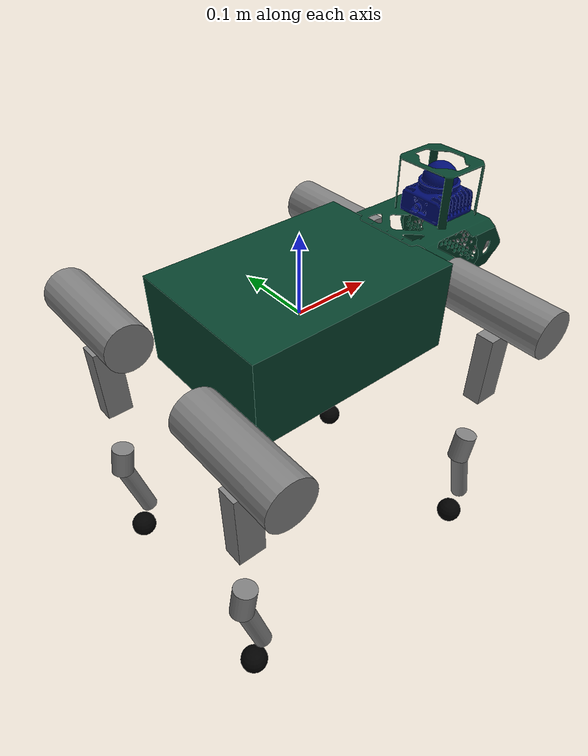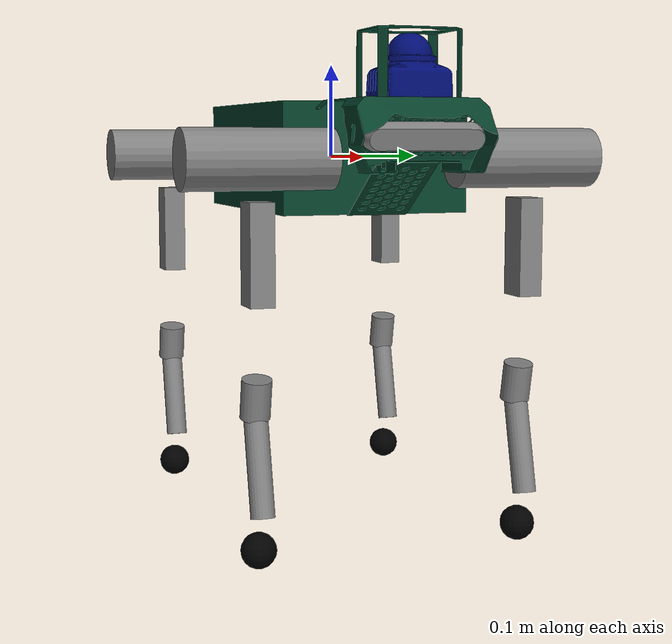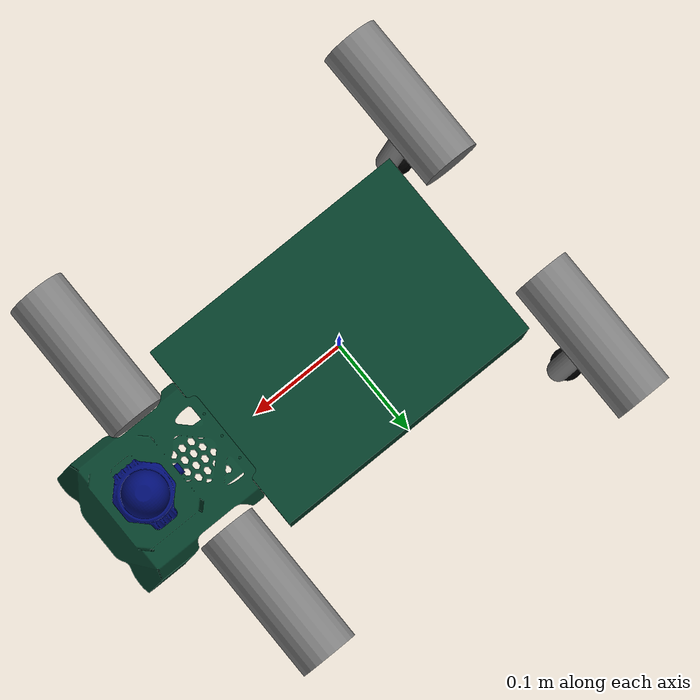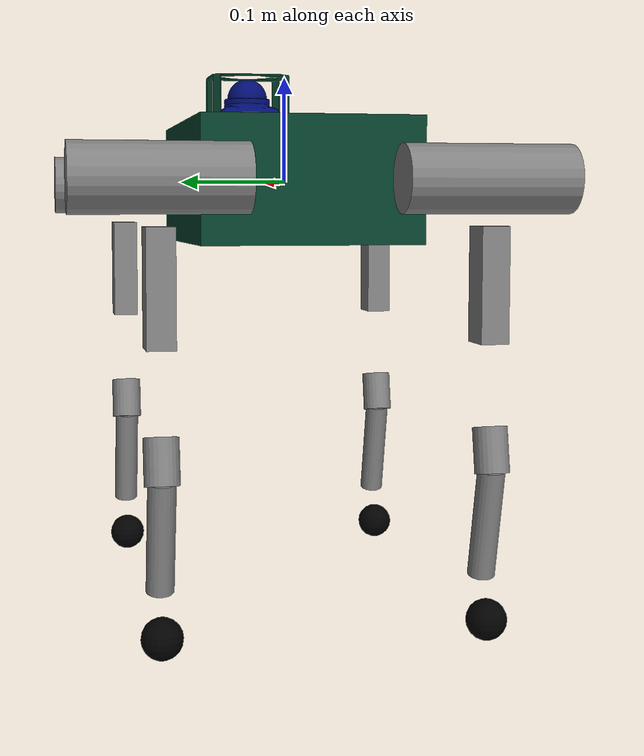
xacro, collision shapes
<?xml version="1.0" encoding="utf-8"?>
<robot name="m2_metal" xmlns:xacro="http://www.ros.org/wiki/xacro">

  <xacro:arg name="robot_controllers" default="$(find m2_sim)/config/ros_control/ros_control.yaml"/>
  <xacro:arg name="command_interface" default="effort"/>
  <xacro:arg name="disable_mid360" default="false"/>
  <xacro:arg name="disable_d455" default="false"/>

  <xacro:include filename="mid360.xacro"/>
  <xacro:include filename="realsense_d455.xacro"/>

  <!-- Materials -->
  <material name="svan_black">
    <color rgba="0.0 0.0 0.0 1.0"/>
  </material>
  <material name="svan_blue">
    <color rgba="0.156 0.55 0.96 1.0"/>
  </material>
  <material name="svan_green">
    <color rgba="0.024 0.251 0.169 1.0"/>
  </material>
  <material name="svan_grey">
    <color rgba="0.5 0.5 0.5 1.0"/>
  </material>

  <!-- Root base_link (REP-120 standard) -->
  <link name="base_link"/>
  <joint name="base_link_joint" type="fixed">
    <parent link="base_link"/>
    <child link="base"/>
    <origin xyz="0 0 0" rpy="0 0 0"/>
  </joint>

  <!-- Base link -->
  <link name="base">
    <inertial>
      <origin rpy="0 0 0" xyz="0 0 -0.00192864853030494"/>
      <mass value="5.627769"/>
      <inertia ixx="0.024980" ixy="-0.000005" ixz="-0.000717"
               iyy="0.053561" iyz="0.000015" izz="0.068454"/>
    </inertial>
    <visual>
      <origin xyz="0 0 0" rpy="0 0 0"/>
      <geometry>
        <mesh filename="package://m2_description/meshes/base_link.STL"/>
      </geometry>
      <material name="svan_green"/>
    </visual>
    <collision>
      <origin xyz="0 0 0" rpy="0 0 0"/>
      <geometry>
        <box size="0.28 0.20 0.114"/>
      </geometry>
    </collision>
  </link>

  <!-- ===== HEAD LINK & JOINT ===== -->
  <link name="Head_link">
    <inertial>
      <origin rpy="0 0 0" xyz="0.0225490273473234 0.00059885557588002 0.0169219464136344"/>
      <mass value="0.356095547247406"/>
      <inertia ixx="0.0012884" ixy="0.0000045" ixz="0.0000276"
               iyy="0.0012358" iyz="-0.0000075" izz="0.0010736"/>
    </inertial>
    <visual>
      <origin rpy="0 0 0" xyz="0 0 0"/>
      <geometry>
        <mesh filename="package://m2_description/meshes/Head_link.STL"/>
      </geometry>
      <material name="svan_green"/>
    </visual>
    <collision>
      <origin rpy="0 0 0" xyz="0 0 0"/>
      <geometry>
        <mesh filename="package://m2_description/meshes/Head_link.STL"/>
      </geometry>
    </collision>
  </link>
  <joint name="Head_Joint" type="fixed">
    <origin rpy="0 0 0" xyz="0.20146 0 0.02275"/>
    <parent link="base"/>
    <child link="Head_link"/>
    <axis xyz="0 0 0"/>
  </joint>

  <!-- Optional Sensors (Mid-360 LiDAR and RealSense D455) -->
  <xacro:unless value="$(arg disable_mid360)">
    <xacro:mid360_lidar parent="Head_link"/>
  </xacro:unless>

  <xacro:unless value="$(arg disable_d455)">
    <xacro:if value="$(arg disable_mid360)">
      <joint name="Lidar_1_casing_joint" type="fixed">
        <origin rpy="0 0 0" xyz="0.020784 0 0.074397"/>
        <parent link="Head_link"/>
        <child link="Lidar_1_link"/>
      </joint>
      <link name="Lidar_1_link"/>
    </xacro:if>
    <xacro:d455_camera parent="Lidar_1_link"/>
  </xacro:unless>

  <!-- IMU link -->
  <link name="imu_link"/>
  <joint name="base_to_imu" type="fixed">
    <parent link="base"/>
    <child link="imu_link"/>
    <origin xyz="0 0 0" rpy="0 0 0"/>
  </joint>

  <!-- ==================== FRONT LEFT (FL) LEG ==================== -->
  <joint name="FL_hip_joint" type="revolute">
    <parent link="base"/>
    <child link="FL_hip"/>
    <origin xyz="0.147 0.06 0.00025" rpy="0 0 0"/>
    <axis xyz="1 0 0"/>
    <limit lower="-4.8" upper="4.9" effort="12" velocity="30"/>
  </joint>
  <link name="FL_hip">
    <inertial>
      <origin xyz="0.00918208 -0.00133606 -0.00430117" rpy="0 0 0"/>
      <mass value="1.127"/>
      <inertia ixx="0.0026019" ixy="0.0001226" ixz="0" iyy="0.0009202" iyz="0" izz="0.0026365"/>
    </inertial>
    <visual>
      <origin xyz="0 0 0" rpy="0 0 0"/>
      <geometry>
        <mesh filename="package://m2_description/meshes/FL_hip.STL"/>
      </geometry>
      <material name="svan_grey"/>
    </visual>
    <collision>
      <origin xyz="0.04 0.08 0.0" rpy="1.57 0 0"/>
      <geometry>
        <cylinder length="0.15" radius="0.03"/>
      </geometry>
    </collision>
  </link>

  <joint name="FL_thigh_joint" type="revolute">
    <parent link="FL_hip"/>
    <child link="FL_thigh"/>
    <origin xyz="0.043751 0.0811 0.0" rpy="0 0 0"/>
    <axis xyz="0 1 0"/>
    <limit lower="-4.04" upper="4.188" effort="12" velocity="30"/>
  </joint>
  <link name="FL_thigh">
    <inertial>
      <origin xyz="0.0 0.00262472 -0.06933846" rpy="0 0 0"/>
      <mass value="0.15396568"/>
      <inertia ixx="0.00075104" ixy="0.0" ixz="0.0" iyy="0.00076" iyz="2.9e-05" izz="4.7e-05"/>
    </inertial>
    <visual>
      <origin xyz="0 0 0" rpy="0 0 0"/>
      <geometry>
        <mesh filename="package://m2_description/meshes/FL_thigh.STL"/>
      </geometry>
      <material name="svan_grey"/>
    </visual>
    <collision>
      <origin xyz="0.0 0.0 -0.09" rpy="0 0 0"/>
      <geometry>
        <box size="0.034 0.0245 0.10"/>
      </geometry>
    </collision>
  </link>

  <joint name="FL_calf_joint" type="revolute">
    <parent link="FL_thigh"/>
    <child link="FL_calf"/>
    <origin xyz="0.0 0.0 -0.1915" rpy="0 0 0"/>
    <axis xyz="0 1 0"/>
    <limit lower="-4.69" upper="4.91" effort="24" velocity="15"/>
  </joint>
  <link name="FL_calf">
    <inertial>
      <origin xyz="-0.00106 0.0 -0.12046" rpy="0 0 0"/>
      <mass value="0.124482"/>
      <inertia ixx="0.0005021" ixy="0.0" ixz="-1.27e-05" iyy="0.000517" iyz="0" izz="2.02e-05"/>
    </inertial>
    <visual>
      <origin xyz="0 0 0" rpy="0 0 0"/>
      <geometry>
        <mesh filename="package://m2_description/meshes/FL_calf.STL"/>
      </geometry>
      <material name="svan_grey"/>
    </visual>
    <collision>
      <origin xyz="-0.01 0.0 -0.04" rpy="0 0.2 0"/>
      <geometry>
        <cylinder length="0.04" radius="0.015"/>
      </geometry>
    </collision>
    <collision>
      <origin xyz="-0.0 0.0 -0.105" rpy="0 -0.24 0"/>
      <geometry>
        <cylinder length="0.1" radius="0.012"/>
      </geometry>
    </collision>
  </link>

  <joint name="FL_foot_joint" type="fixed" dont_collapse="true">
    <parent link="FL_calf"/>
    <child link="FL_foot"/>
    <origin xyz="-0.00351 0.0 -0.1901" rpy="0 0 0"/>
    <axis xyz="0 0 0"/>
    <limit lower="0" upper="0" effort="1000" velocity="0"/>
  </joint>
  <link name="FL_foot">
    <inertial>
      <origin xyz="-0.0025566 0.00017773 -0.00416818" rpy="0 0 0"/>
      <mass value="0.02330447"/>
      <inertia ixx="2.62e-06" ixy="0" ixz="3.7e-07" iyy="2.62e-06" iyz="0" izz="3e-06"/>
    </inertial>
    <visual>
      <origin xyz="0 0 0" rpy="0 0 0"/>
      <geometry>
        <mesh filename="package://m2_description/meshes/FL_foot.STL"/>
      </geometry>
      <material name="svan_black"/>
    </visual>
    <collision name="FL_foot_collision">
      <origin xyz="0.0 0.0 0.0" rpy="0 0 0"/>
      <geometry>
        <sphere radius="0.018"/>
      </geometry>
    </collision>
  </link>

  <link name="FL_foot_site"/>
  <joint name="FL_foot_site_joint" type="fixed" dont_collapse="true">
    <origin rpy="0 0 0" xyz="-0.0 0 -0.016"/>
    <parent link="FL_foot"/>
    <child link="FL_foot_site"/>
    <axis xyz="0 0 1"/>
    <limit effort="1000" lower="0" upper="0" velocity="0"/>
  </joint>

  <!-- ==================== FRONT RIGHT (FR) LEG ==================== -->
  <joint name="FR_hip_joint" type="revolute">
    <parent link="base"/>
    <child link="FR_hip"/>
    <origin xyz="0.147 -0.06 0.00025" rpy="0 0 0"/>
    <axis xyz="1 0 0"/>
    <limit lower="-4.8" upper="4.9" effort="12" velocity="30"/>
  </joint>
  <link name="FR_hip">
    <inertial>
      <origin xyz="0.00918208 -0.00133606 -0.00430117" rpy="0 0 0"/>
      <mass value="1.127"/>
      <inertia ixx="0.0026019" ixy="0.0001226" ixz="0" iyy="0.0009202" iyz="0" izz="0.0026365"/>
    </inertial>
    <visual>
      <origin xyz="0 0 0" rpy="0 0 0"/>
      <geometry>
        <mesh filename="package://m2_description/meshes/FR_hip.STL"/>
      </geometry>
      <material name="svan_grey"/>
    </visual>
    <collision>
      <origin xyz="0.04 -0.08 0.0" rpy="1.57 0 0"/>
      <geometry>
        <cylinder length="0.15" radius="0.03"/>
      </geometry>
    </collision>
  </link>

  <joint name="FR_thigh_joint" type="revolute">
    <parent link="FR_hip"/>
    <child link="FR_thigh"/>
    <origin xyz="0.043751 -0.0811 0.0" rpy="0 0 0"/>
    <axis xyz="0 1 0"/>
    <limit lower="-4.04" upper="4.188" effort="12" velocity="30"/>
  </joint>
  <link name="FR_thigh">
    <inertial>
      <origin xyz="0.0 0.00262472 -0.06933846" rpy="0 0 0"/>
      <mass value="0.15396568"/>
      <inertia ixx="0.00075104" ixy="0.0" ixz="0.0" iyy="0.00076" iyz="2.9e-05" izz="4.7e-05"/>
    </inertial>
    <visual>
      <origin xyz="0 0 0" rpy="0 0 0"/>
      <geometry>
        <mesh filename="package://m2_description/meshes/FR_thigh.STL"/>
      </geometry>
      <material name="svan_grey"/>
    </visual>
    <collision>
      <origin xyz="0.0 -0.0 -0.09" rpy="0 0 0"/>
      <geometry>
        <box size="0.034 0.0245 0.10"/>
      </geometry>
    </collision>
  </link>

  <joint name="FR_calf_joint" type="revolute">
    <parent link="FR_thigh"/>
    <child link="FR_calf"/>
    <origin xyz="0.0 -0.0 -0.1915" rpy="0 0 0"/>
    <axis xyz="0 1 0"/>
    <limit lower="-4.69" upper="4.91" effort="24" velocity="15"/>
  </joint>
  <link name="FR_calf">
    <inertial>
      <origin xyz="-0.00106 -0.0 -0.12046" rpy="0 0 0"/>
      <mass value="0.124482"/>
      <inertia ixx="0.0005021" ixy="0.0" ixz="-1.27e-05" iyy="0.000517" iyz="0" izz="2.02e-05"/>
    </inertial>
    <visual>
      <origin xyz="0 0 0" rpy="0 0 0"/>
      <geometry>
        <mesh filename="package://m2_description/meshes/FR_calf.STL"/>
      </geometry>
      <material name="svan_grey"/>
    </visual>
    <collision>
      <origin xyz="-0.01 -0.0 -0.04" rpy="0 0.2 0"/>
      <geometry>
        <cylinder length="0.04" radius="0.015"/>
      </geometry>
    </collision>
    <collision>
      <origin xyz="-0.0 -0.0 -0.105" rpy="0 -0.24 0"/>
      <geometry>
        <cylinder length="0.1" radius="0.012"/>
      </geometry>
    </collision>
  </link>

  <joint name="FR_foot_joint" type="fixed" dont_collapse="true">
    <parent link="FR_calf"/>
    <child link="FR_foot"/>
    <origin xyz="-0.00351 -0.0 -0.1901" rpy="0 0 0"/>
    <axis xyz="0 0 0"/>
    <limit lower="0" upper="0" effort="1000" velocity="0"/>
  </joint>
  <link name="FR_foot">
    <inertial>
      <origin xyz="-0.0025566 0.00017773 -0.00416818" rpy="0 0 0"/>
      <mass value="0.02330447"/>
      <inertia ixx="2.62e-06" ixy="0" ixz="3.7e-07" iyy="2.62e-06" iyz="0" izz="3e-06"/>
    </inertial>
    <visual>
      <origin xyz="0 0 0" rpy="0 0 0"/>
      <geometry>
        <mesh filename="package://m2_description/meshes/FR_foot.STL"/>
      </geometry>
      <material name="svan_black"/>
    </visual>
    <collision name="FR_foot_collision">
      <origin xyz="0.0 0.0 0.0" rpy="0 0 0"/>
      <geometry>
        <sphere radius="0.018"/>
      </geometry>
    </collision>
  </link>

  <link name="FR_foot_site"/>
  <joint name="FR_foot_site_joint" type="fixed" dont_collapse="true">
    <origin rpy="0 0 0" xyz="-0.0 0 -0.016"/>
    <parent link="FR_foot"/>
    <child link="FR_foot_site"/>
    <axis xyz="0 0 1"/>
    <limit effort="1000" lower="0" upper="0" velocity="0"/>
  </joint>

  <!-- ==================== REAR LEFT (RL) LEG ==================== -->
  <joint name="RL_hip_joint" type="revolute">
    <parent link="base"/>
    <child link="RL_hip"/>
    <origin xyz="-0.147 0.06 0.00025" rpy="0 0 0"/>
    <axis xyz="1 0 0"/>
    <limit lower="-4.8" upper="4.9" effort="12" velocity="30"/>
  </joint>
  <link name="RL_hip">
    <inertial>
      <origin xyz="0.00918208 -0.00133606 -0.00430117" rpy="0 0 0"/>
      <mass value="1.127"/>
      <inertia ixx="0.0026019" ixy="0.0001226" ixz="0" iyy="0.0009202" iyz="0" izz="0.0026365"/>
    </inertial>
    <visual>
      <origin xyz="0 0 0" rpy="0 0 0"/>
      <geometry>
        <mesh filename="package://m2_description/meshes/RL_hip.STL"/>
      </geometry>
      <material name="svan_grey"/>
    </visual>
    <collision>
      <origin xyz="-0.04 0.08 0.0" rpy="1.57 0 0"/>
      <geometry>
        <cylinder length="0.15" radius="0.03"/>
      </geometry>
    </collision>
  </link>

  <joint name="RL_thigh_joint" type="revolute">
    <parent link="RL_hip"/>
    <child link="RL_thigh"/>
    <origin xyz="-0.043751 0.0811 0.0" rpy="0 0 0"/>
    <axis xyz="0 1 0"/>
    <limit lower="-4.04" upper="4.188" effort="12" velocity="30"/>
  </joint>
  <link name="RL_thigh">
    <inertial>
      <origin xyz="0.0 0.00262472 -0.06933846" rpy="0 0 0"/>
      <mass value="0.15396568"/>
      <inertia ixx="0.00075104" ixy="0.0" ixz="0.0" iyy="0.00076" iyz="2.9e-05" izz="4.7e-05"/>
    </inertial>
    <visual>
      <origin xyz="0 0 0" rpy="0 0 0"/>
      <geometry>
        <mesh filename="package://m2_description/meshes/RL_thigh.STL"/>
      </geometry>
      <material name="svan_grey"/>
    </visual>
    <collision>
      <origin xyz="-0.0 0.0 -0.09" rpy="0 0 0"/>
      <geometry>
        <box size="0.034 0.0245 0.10"/>
      </geometry>
    </collision>
  </link>

  <joint name="RL_calf_joint" type="revolute">
    <parent link="RL_thigh"/>
    <child link="RL_calf"/>
    <origin xyz="-0.0 0.0 -0.1915" rpy="0 0 0"/>
    <axis xyz="0 1 0"/>
    <limit lower="-4.69" upper="4.91" effort="24" velocity="15"/>
  </joint>
  <link name="RL_calf">
    <inertial>
      <origin xyz="-0.00106 0.0 -0.1083" rpy="0 0 0"/>
      <mass value="0.124482"/>
      <inertia ixx="0.0005021" ixy="0.0" ixz="-1.27e-05" iyy="0.000517" iyz="0" izz="2.02e-05"/>
    </inertial>
    <visual>
      <origin xyz="0 0 0" rpy="0 0 0"/>
      <geometry>
        <mesh filename="package://m2_description/meshes/RL_calf.STL"/>
      </geometry>
      <material name="svan_grey"/>
    </visual>
    <collision>
      <origin xyz="-0.01 0.0 -0.04" rpy="0 0.2 0"/>
      <geometry>
        <cylinder length="0.04" radius="0.015"/>
      </geometry>
    </collision>
    <collision>
      <origin xyz="-0.0 0.0 -0.105" rpy="0 -0.24 0"/>
      <geometry>
        <cylinder length="0.1" radius="0.012"/>
      </geometry>
    </collision>
  </link>

  <joint name="RL_foot_joint" type="fixed" dont_collapse="true">
    <parent link="RL_calf"/>
    <child link="RL_foot"/>
    <origin xyz="-0.00351 0.0 -0.1901" rpy="0 0 0"/>
    <axis xyz="0 0 0"/>
    <limit lower="0" upper="0" effort="1000" velocity="0"/>
  </joint>
  <link name="RL_foot">
    <inertial>
      <origin xyz="-0.0025566 0.00017773 -0.00416818" rpy="0 0 0"/>
      <mass value="0.02330447"/>
      <inertia ixx="2.62e-06" ixy="0" ixz="3.7e-07" iyy="2.62e-06" iyz="0" izz="3e-06"/>
    </inertial>
    <visual>
      <origin xyz="0 0 0" rpy="0 0 0"/>
      <geometry>
        <mesh filename="package://m2_description/meshes/RL_foot.STL"/>
      </geometry>
      <material name="svan_black"/>
    </visual>
    <collision name="RL_foot_collision">
      <origin xyz="0.0 0.0 0.0" rpy="0 0 0"/>
      <geometry>
        <sphere radius="0.018"/>
      </geometry>
    </collision>
  </link>

  <link name="RL_foot_site"/>
  <joint name="RL_foot_site_joint" type="fixed" dont_collapse="true">
    <origin rpy="0 0 0" xyz="-0.0 0 -0.016"/>
    <parent link="RL_foot"/>
    <child link="RL_foot_site"/>
    <axis xyz="0 0 1"/>
    <limit effort="1000" lower="0" upper="0" velocity="0"/>
  </joint>

  <!-- ==================== REAR RIGHT (RR) LEG ==================== -->
  <joint name="RR_hip_joint" type="revolute">
    <parent link="base"/>
    <child link="RR_hip"/>
    <origin xyz="-0.147 -0.06 0.00025" rpy="0 0 0"/>
    <axis xyz="1 0 0"/>
    <limit lower="-4.8" upper="4.9" effort="12" velocity="30"/>
  </joint>
  <link name="RR_hip">
    <inertial>
      <origin xyz="0.00918208 -0.00133606 -0.00430117" rpy="0 0 0"/>
      <mass value="1.127"/>
      <inertia ixx="0.0026019" ixy="0.0001226" ixz="0" iyy="0.0009202" iyz="0" izz="0.0026365"/>
    </inertial>
    <visual>
      <origin xyz="0 0 0" rpy="0 0 0"/>
      <geometry>
        <mesh filename="package://m2_description/meshes/RR_hip.STL"/>
      </geometry>
      <material name="svan_grey"/>
    </visual>
    <collision>
      <origin xyz="-0.04 -0.08 0.0" rpy="1.57 0 0"/>
      <geometry>
        <cylinder length="0.15" radius="0.03"/>
      </geometry>
    </collision>
  </link>

  <joint name="RR_thigh_joint" type="revolute">
    <parent link="RR_hip"/>
    <child link="RR_thigh"/>
    <origin xyz="-0.043751 -0.0811 0.0" rpy="0 0 0"/>
    <axis xyz="0 1 0"/>
    <limit lower="-4.04" upper="4.188" effort="12" velocity="30"/>
  </joint>
  <link name="RR_thigh">
    <inertial>
      <origin xyz="0.0 0.00262472 -0.06933846" rpy="0 0 0"/>
      <mass value="0.15396568"/>
      <inertia ixx="0.00075104" ixy="0.0" ixz="0.0" iyy="0.00076" iyz="2.9e-05" izz="4.7e-05"/>
    </inertial>
    <visual>
      <origin xyz="0 0 0" rpy="0 0 0"/>
      <geometry>
        <mesh filename="package://m2_description/meshes/RR_thigh.STL"/>
      </geometry>
      <material name="svan_grey"/>
    </visual>
    <collision>
      <origin xyz="-0.0 -0.0 -0.09" rpy="0 0 0"/>
      <geometry>
        <box size="0.034 0.0245 0.10"/>
      </geometry>
    </collision>
  </link>

  <joint name="RR_calf_joint" type="revolute">
    <parent link="RR_thigh"/>
    <child link="RR_calf"/>
    <origin xyz="-0.0 -0.0 -0.1915" rpy="0 0 0"/>
    <axis xyz="0 1 0"/>
    <limit lower="-4.69" upper="4.91" effort="24" velocity="15"/>
  </joint>
  <link name="RR_calf">
    <inertial>
      <origin xyz="-0.00106 -0.0 -0.1083" rpy="0 0 0"/>
      <mass value="0.124482"/>
      <inertia ixx="0.0005021" ixy="0.0" ixz="-1.27e-05" iyy="0.000517" iyz="0" izz="2.02e-05"/>
    </inertial>
    <visual>
      <origin xyz="0 0 0" rpy="0 0 0"/>
      <geometry>
        <mesh filename="package://m2_description/meshes/RR_calf.STL"/>
      </geometry>
      <material name="svan_grey"/>
    </visual>
    <collision>
      <origin xyz="-0.01 -0.0 -0.04" rpy="0 0.2 0"/>
      <geometry>
        <cylinder length="0.04" radius="0.015"/>
      </geometry>
    </collision>
    <collision>
      <origin xyz="-0.0 -0.0 -0.105" rpy="0 -0.24 0"/>
      <geometry>
        <cylinder length="0.1" radius="0.012"/>
      </geometry>
    </collision>
  </link>

  <joint name="RR_foot_joint" type="fixed" dont_collapse="true">
    <parent link="RR_calf"/>
    <child link="RR_foot"/>
    <origin xyz="-0.00351 -0.0 -0.1901" rpy="0 0 0"/>
    <axis xyz="0 0 0"/>
    <limit lower="0" upper="0" effort="1000" velocity="0"/>
  </joint>
  <link name="RR_foot">
    <inertial>
      <origin xyz="-0.0025566 0.00017773 -0.00416818" rpy="0 0 0"/>
      <mass value="0.02330447"/>
      <inertia ixx="2.62e-06" ixy="0" ixz="3.7e-07" iyy="2.62e-06" iyz="0" izz="3e-06"/>
    </inertial>
    <visual>
      <origin xyz="0 0 0" rpy="0 0 0"/>
      <geometry>
        <mesh filename="package://m2_description/meshes/RR_foot.STL"/>
      </geometry>
      <material name="svan_black"/>
    </visual>
    <collision name="RR_foot_collision">
      <origin xyz="0.0 0.0 0.0" rpy="0 0 0"/>
      <geometry>
        <sphere radius="0.018"/>
      </geometry>
    </collision>
  </link>

  <link name="RR_foot_site"/>
  <joint name="RR_foot_site_joint" type="fixed" dont_collapse="true">
    <origin rpy="0 0 0" xyz="-0.0 0 -0.016"/>
    <parent link="RR_foot"/>
    <child link="RR_foot_site"/>
    <axis xyz="0 0 1"/>
    <limit effort="1000" lower="0" upper="0" velocity="0"/>
  </joint>

  <!-- ==================== GAZEBO SIM PLUGINS ==================== -->
  <!-- ROS 2 Control Plugin -->
  <gazebo>
    <plugin filename="gz_ros2_control-system" name="gz_ros2_control::GazeboSimROS2ControlPlugin">
      <parameters>$(arg robot_controllers)</parameters>
      <robot_param_node>robot_state_publisher</robot_param_node>
    </plugin>
  </gazebo>

  <!-- Ground-truth Odometry Plugin -->
  <gazebo>
    <plugin filename="gz-sim-odometry-publisher-system"
      name="gz::sim::systems::OdometryPublisher">
      <odom_frame>odom</odom_frame>
      <dimensions>3</dimensions>
      <robot_base_frame>base_link</robot_base_frame>
      <odom_topic>/odom/ground_truth</odom_topic>
      <odom_publish_frequency>50</odom_publish_frequency>
    </plugin>
  </gazebo>

  <!-- IMU Plugin on imu_link -->
  <gazebo reference="imu_link">
    <sensor name="imu_sensor" type="imu">
      <always_on>true</always_on>
      <update_rate>100</update_rate>
      <visualize>false</visualize>
      <topic>imu/data</topic>
      <gz_frame_id>imu_link</gz_frame_id>
      <imu>
        <angular_velocity>
          <x><noise type="gaussian"><mean>0.0</mean><stddev>2e-4</stddev></noise></x>
          <y><noise type="gaussian"><mean>0.0</mean><stddev>2e-4</stddev></noise></y>
          <z><noise type="gaussian"><mean>0.0</mean><stddev>2e-4</stddev></noise></z>
        </angular_velocity>
        <linear_acceleration>
          <x><noise type="gaussian"><mean>0.0</mean><stddev>1.7e-2</stddev></noise></x>
          <y><noise type="gaussian"><mean>0.0</mean><stddev>1.7e-2</stddev></noise></y>
          <z><noise type="gaussian"><mean>0.0</mean><stddev>1.7e-2</stddev></noise></z>
        </linear_acceleration>
      </imu>
      <plugin filename="gz-sim-imu-system" name="gz::sim::systems::Imu">
        <initial_orientation_as_reference>false</initial_orientation_as_reference>
      </plugin>
    </sensor>
  </gazebo>

  <!-- Base link physics -->
  <gazebo reference="base">
    <mu1>0.2</mu1>
    <mu2>0.2</mu2>
    <kp>10000.0</kp>
    <kd>1.0</kd>
  </gazebo>

  <!-- Feet Contact Sensors and Joint Preservation -->
  <!-- FL Foot -->
  <gazebo reference="FL_foot">
    <mu1>1.5</mu1>
    <mu2>1.5</mu2>
    <kp>10000.0</kp>
    <kd>1.0</kd>
    <sensor name="lf_foot_contact_sensor" type="contact">
      <always_on>true</always_on>
      <update_rate>100.0</update_rate>
      <contact>
        <collision>FL_foot_collision</collision>
        <topic>/lf_foot_contacts</topic>
      </contact>
    </sensor>
  </gazebo>
  <gazebo reference="FL_foot_joint">
    <preserveFixedJoint>true</preserveFixedJoint>
  </gazebo>

  <!-- FR Foot -->
  <gazebo reference="FR_foot">
    <mu1>1.5</mu1>
    <mu2>1.5</mu2>
    <kp>10000.0</kp>
    <kd>1.0</kd>
    <sensor name="rf_foot_contact_sensor" type="contact">
      <always_on>true</always_on>
      <update_rate>100.0</update_rate>
      <contact>
        <collision>FR_foot_collision</collision>
        <topic>/rf_foot_contacts</topic>
      </contact>
    </sensor>
  </gazebo>
  <gazebo reference="FR_foot_joint">
    <preserveFixedJoint>true</preserveFixedJoint>
  </gazebo>

  <!-- RL Foot -->
  <gazebo reference="RL_foot">
    <mu1>1.5</mu1>
    <mu2>1.5</mu2>
    <kp>10000.0</kp>
    <kd>1.0</kd>
    <sensor name="lh_foot_contact_sensor" type="contact">
      <always_on>true</always_on>
      <update_rate>100.0</update_rate>
      <contact>
        <collision>RL_foot_collision</collision>
        <topic>/lh_foot_contacts</topic>
      </contact>
    </sensor>
  </gazebo>
  <gazebo reference="RL_foot_joint">
    <preserveFixedJoint>true</preserveFixedJoint>
  </gazebo>

  <!-- RR Foot -->
  <gazebo reference="RR_foot">
    <mu1>1.5</mu1>
    <mu2>1.5</mu2>
    <kp>10000.0</kp>
    <kd>1.0</kd>
    <sensor name="rh_foot_contact_sensor" type="contact">
      <always_on>true</always_on>
      <update_rate>100.0</update_rate>
      <contact>
        <collision>RR_foot_collision</collision>
        <topic>/rh_foot_contacts</topic>
      </contact>
    </sensor>
  </gazebo>
  <gazebo reference="RR_foot_joint">
    <preserveFixedJoint>true</preserveFixedJoint>
  </gazebo>

  <!-- ==================== ROS 2 CONTROL HARDWARE INTERFACE ==================== -->
  <ros2_control name="m2_control" type="system">
    <hardware>
      <plugin>gz_ros2_control/GazeboSimSystem</plugin>
    </hardware>

    <!-- FL Leg Joints -->
    <joint name="FL_hip_joint">
      <command_interface name="$(arg command_interface)"/>
      <state_interface name="position"/>
      <state_interface name="velocity"/>
    </joint>
    <joint name="FL_thigh_joint">
      <command_interface name="$(arg command_interface)"/>
      <state_interface name="position"/>
      <state_interface name="velocity"/>
    </joint>
    <joint name="FL_calf_joint">
      <command_interface name="$(arg command_interface)"/>
      <state_interface name="position"/>
      <state_interface name="velocity"/>
    </joint>

    <!-- FR Leg Joints -->
    <joint name="FR_hip_joint">
      <command_interface name="$(arg command_interface)"/>
      <state_interface name="position"/>
      <state_interface name="velocity"/>
    </joint>
    <joint name="FR_thigh_joint">
      <command_interface name="$(arg command_interface)"/>
      <state_interface name="position"/>
      <state_interface name="velocity"/>
    </joint>
    <joint name="FR_calf_joint">
      <command_interface name="$(arg command_interface)"/>
      <state_interface name="position"/>
      <state_interface name="velocity"/>
    </joint>

    <!-- RL Leg Joints -->
    <joint name="RL_hip_joint">
      <command_interface name="$(arg command_interface)"/>
      <state_interface name="position"/>
      <state_interface name="velocity"/>
    </joint>
    <joint name="RL_thigh_joint">
      <command_interface name="$(arg command_interface)"/>
      <state_interface name="position"/>
      <state_interface name="velocity"/>
    </joint>
    <joint name="RL_calf_joint">
      <command_interface name="$(arg command_interface)"/>
      <state_interface name="position"/>
      <state_interface name="velocity"/>
    </joint>

    <!-- RR Leg Joints -->
    <joint name="RR_hip_joint">
      <command_interface name="$(arg command_interface)"/>
      <state_interface name="position"/>
      <state_interface name="velocity"/>
    </joint>
    <joint name="RR_thigh_joint">
      <command_interface name="$(arg command_interface)"/>
      <state_interface name="position"/>
      <state_interface name="velocity"/>
    </joint>
    <joint name="RR_calf_joint">
      <command_interface name="$(arg command_interface)"/>
      <state_interface name="position"/>
      <state_interface name="velocity"/>
    </joint>
  </ros2_control>

</robot>

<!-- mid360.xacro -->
<robot xmlns:xacro="http://www.ros.org/wiki/xacro">

  <xacro:macro name="mid360_lidar" params="parent:=Head_link">

    <!-- Livox Mid-360 Mounting Joint and Link -->
    <joint name="Lidar_1_joint" type="fixed">
      <origin rpy="0 0 0" xyz="0.020784 0 0.074397"/>
      <parent link="${parent}"/>
      <child link="Lidar_1_link"/>
    </joint>

    <link name="Lidar_1_link">
      <inertial>
        <origin rpy="0 0 0" xyz="0.000213163047085158 -6.16932795034775e-06 -0.0172592260167642"/>
        <mass value="0.265"/>
        <inertia ixx="0.0001237" ixy="0" ixz="0"
                 iyy="0.0001333" iyz="0" izz="0.0001323"/>
      </inertial>
      <visual>
        <origin rpy="0 0 0" xyz="0 0 0"/>
        <geometry>
          <mesh filename="package://m2_description/meshes/Lidar_1_link.STL"/>
        </geometry>
        <material name="svan_dark_blue">
          <color rgba="0.0 0.05 0.45 1.0"/>
        </material>
      </visual>
      <collision>
        <origin rpy="0 0 0" xyz="0 0 0"/>
        <geometry>
          <mesh filename="package://m2_description/meshes/Lidar_1_link.STL"/>
        </geometry>
      </collision>
    </link>

    <!-- Mid-360 Optical / Ray Frame (at top optical dome of Mid-360) -->
    <joint name="mid360_sensor_joint" type="fixed">
      <origin rpy="0 0 0" xyz="0 0 0.025"/>
      <parent link="Lidar_1_link"/>
      <child link="mid360_link"/>
    </joint>
    <link name="mid360_link"/>

    <!-- Gazebo Sim GPU LiDAR Plugin for Mid-360 -->
    <gazebo reference="mid360_link">
      <sensor name="mid360" type="gpu_lidar">
        <topic>mid360</topic>
        <update_rate>10</update_rate>
        <gz_frame_id>mid360_link</gz_frame_id>
        <lidar>
          <scan>
            <horizontal>
              <samples>720</samples>
              <resolution>1</resolution>
              <min_angle>-3.14159265</min_angle>
              <max_angle>3.14159265</max_angle>
            </horizontal>
            <vertical>
              <!-- Downward-capable FOV for simulation (-25 deg to +35 deg, 48 rings) -->
              <samples>48</samples>
              <resolution>1</resolution>
              <min_angle>-0.436332</min_angle>
              <max_angle>0.610865</max_angle>
            </vertical>
          </scan>
          <range>
            <min>0.15</min>
            <max>40.0</max>
            <resolution>0.001</resolution>
          </range>
          <noise>
            <type>gaussian</type>
            <mean>0.0</mean>
            <stddev>0.005</stddev>
          </noise>
        </lidar>
        <visualize>true</visualize>
        <always_on>1</always_on>
      </sensor>
    </gazebo>

  </xacro:macro>

</robot>

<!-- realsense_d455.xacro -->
<robot xmlns:xacro="http://www.ros.org/wiki/xacro">

  <xacro:macro name="d455_camera" params="parent:=Lidar_1_link">

    <!-- RealSense D455 Camera Mounting Joint and Link -->
    <joint name="Camera_Joint" type="fixed">
      <origin rpy="0 0 0" xyz="0.026765 0 -0.073361"/>
      <parent link="${parent}"/>
      <child link="Camera_Link"/>
    </joint>

    <link name="Camera_Link">
      <inertial>
        <origin rpy="0 0 0" xyz="0.0101390855813485 3.5095208870406e-06 -0.00271488784588553"/>
        <mass value="0.106"/>
        <inertia ixx="0.000141" ixy="0" ixz="0"
                 iyy="0.000014" iyz="0" izz="0.000140"/>
      </inertial>
      <visual>
        <origin rpy="0 0 0" xyz="0 0 0"/>
        <geometry>
          <mesh filename="package://m2_description/meshes/Camera_Link.STL"/>
        </geometry>
        <material name="svan_grey">
          <color rgba="0.5 0.5 0.5 1.0"/>
        </material>
      </visual>
      <collision>
        <origin rpy="0 0 0" xyz="0 0 0"/>
        <geometry>
          <mesh filename="package://m2_description/meshes/Camera_Link.STL"/>
        </geometry>
      </collision>
    </link>

    <!-- Standard ROS REP-103 Optical Frame -->
    <joint name="d455_optical_joint" type="fixed">
      <origin rpy="-1.57079632679 0 -1.57079632679" xyz="0 0 0"/>
      <parent link="Camera_Link"/>
      <child link="d455_optical_frame"/>
    </joint>
    <link name="d455_optical_frame"/>

    <!-- Gazebo Sim RGBD Camera sensor plugin -->
    <gazebo reference="Camera_Link">
      <sensor name="d455_rgbd_camera" type="rgbd_camera">
        <pose>0 0 0 0 0 0</pose>
        <camera>
          <horizontal_fov>1.5184</horizontal_fov> <!-- 87 deg D455 HFOV -->
          <image>
            <width>640</width>
            <height>480</height>
          </image>
          <clip>
            <near>0.2</near>
            <far>10.0</far>
          </clip>
        </camera>
        <always_on>1</always_on>
        <update_rate>15</update_rate>
        <visualize>true</visualize>
        <topic>d455</topic>
        <gz_frame_id>Camera_Link</gz_frame_id>
      </sensor>
    </gazebo>

  </xacro:macro>

</robot>
